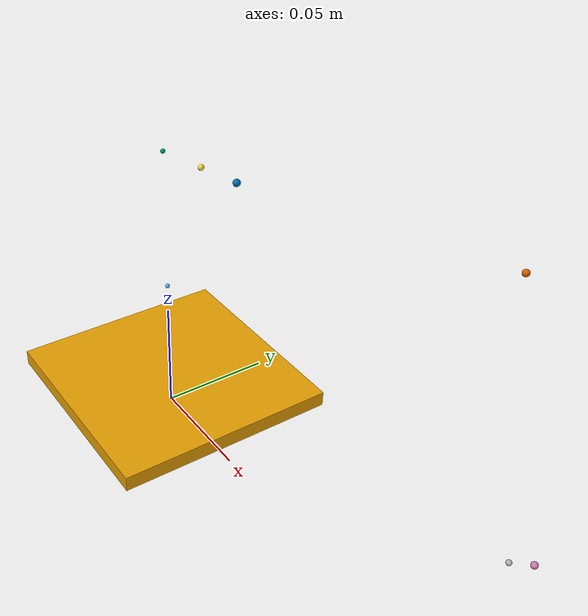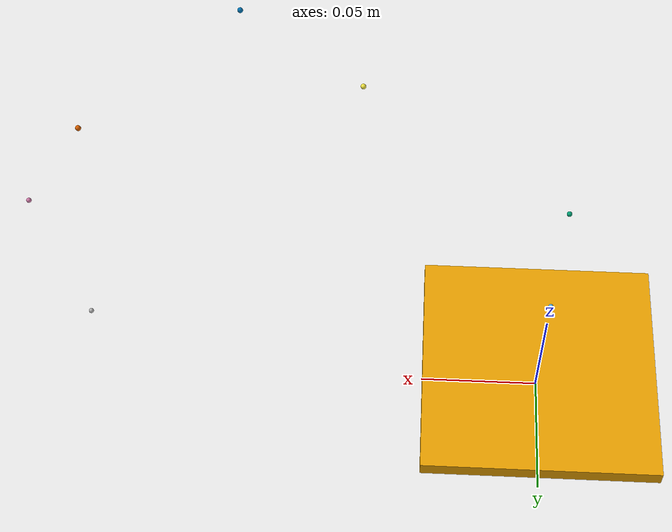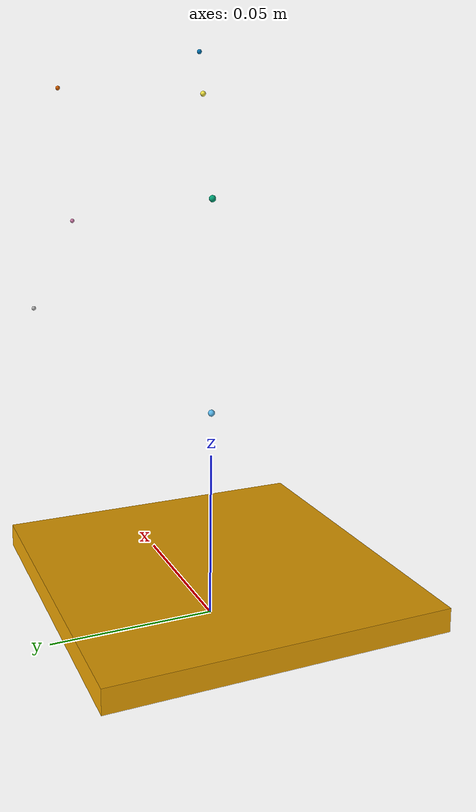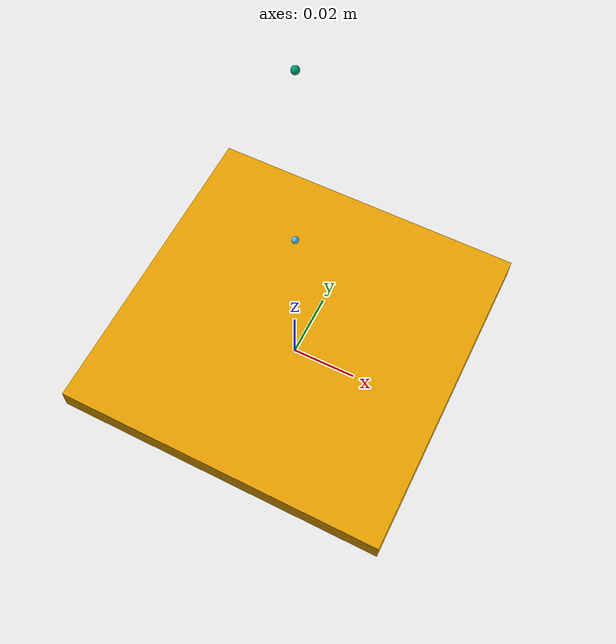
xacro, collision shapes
<?xml version="1.0"?>
<robot xmlns:xacro="http://www.ros.org/wiki/xacro" name="cyton">
  <xacro:include filename="$(find cyton_ros2_gazebo)/urdf/cyton_macros.urdf.xacro" />
  <xacro:cyton_robot/>
  <link name="world"/>
  <joint name="world_joint" type="fixed">
    <parent link="world" />
    <child link = "base_link" />
    <origin xyz="0.0 0.0 0.01" rpy="0.0 0.0 0.0" />
  </joint>
</robot>

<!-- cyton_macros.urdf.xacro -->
<robot xmlns:xacro="http://www.ros.org/wiki/xacro">

    <xacro:include filename="$(find cyton_ros2_gazebo)/urdf/cyton_gazebo.xacro" />
    <xacro:include filename="$(find cyton_ros2_gazebo)/urdf/cyton_transmission.xacro" />

    <xacro:macro name="cyton_robot">

        <xacro:cyton_transmission />
        <xacro:cyton_gazebo />

        <!-- Initial footprint motor used here -->
        <xacro:macro name="base_footprint">
            <link name="base_footprint">
                <!-- ZMIENIĆ!!! -->
                <inertial>
                    <mass value="2.92"/>
                    <origin rpy="0 0 0" xyz="-0.025566 -2.88e-05 0.057332"/>
                    <inertia ixx="0.00782229414331" ixy="-1.56191622996e-05" ixz="-0.00126005738123" iyy="0.0109027971813" iyz="1.08233858202e-05" izz="0.0102355503949"/>
                  </inertial>
                <!-- ZMIENIĆ -->
                <visual>
                    <origin xyz="0 0 1" rpy="0 0 0" />
                    <geometry>
                        <sphere radius="0.001" />
                    </geometry>
                    <material name="white">
                        <color rgba="1 1 1 1" />
                    </material>
                </visual>
                <collision>
                    <origin xyz="0 0 1" rpy="0 0 0" />
                    <geometry>
                        <sphere radius="0.01" />
                    </geometry>
                </collision>
            </link>

            <joint name="base_joint" type="fixed">
                <parent link="base_footprint" />
                <child link="base_link" />
                <dynamics damping="0.5" friction="0.5"/>
                <origin xyz="0.0 0.0 0.0" rpy="0 0 0" />
            </joint>
        </xacro:macro>

        <!-- Base of robot here -->
        <link name="base_link">
            <visual>
                <origin xyz="0 0 0" rpy="0 0 0" />
                <geometry>
                    <mesh filename="file://$(find cyton_ros2_gazebo)/meshes/visual/gamma_base.dae" />
                </geometry>
            </visual>
            <collision>
                <origin xyz="0 0 0.0026" />
                <geometry>
                    <box size="0.1 0.1 0.007" />
                </geometry>
            </collision>
            <inertial>
                <mass value="100.0" />
                <origin rpy="0 0 0" xyz="0 0 0" />
                <inertia ixx="1.1027" iyy="1.1027" izz="1.1027"
                    ixy="0.05" ixz="0.05" iyz="0.05" />
            </inertial>
        </link>

        <!-- First motor located here -->
        <joint name="shoulder_roll_joint" type="revolute">
            <parent link="base_link" />
            <child link="shoulder_roll" />
            <origin xyz="0 0 0.05315" rpy="0 0 1.2" />
            <dynamics damping="0.5" friction="0.5"/>
            <limit lower="-2.618" upper="2.618" effort="7.0" velocity="1.0" />
            <axis xyz="0 0 1" />
        </joint>

        <link name="shoulder_roll">
            <visual>
                <origin xyz="0 0 0" rpy="1.5708 0 3.14159" />
                <geometry>
                    <mesh filename="file://$(find cyton_ros2_gazebo)/meshes/visual/Shoulder_Roll.dae" />
                </geometry>
            </visual>

            <collision>
                <origin xyz="0 0 0" rpy="0 0 0" />
                <geometry>
                    <sphere radius="0.001" />
                </geometry>
            </collision>
            <inertial>
                <mass value="50.0" />
                <origin rpy="0 0 0" xyz="0 0 0" />
                <inertia ixx=".1027" iyy=".1027" izz=".1027"
                    ixy="0.05" ixz="0.05" iyz="0.05" />
            </inertial>
        </link>

        <!-- Second motor located here -->
        <joint name="shoulder_pitch_joint" type="revolute">
            <parent link="shoulder_roll" />
            <child link="shoulder_pitch" />
            <origin xyz="0 0 0.063" rpy="1.2 0 0" />
            <dynamics damping="0.5" friction="0.5"/>
            <limit lower="-1.8326" upper="1.8326" effort="7.0" velocity="1.0" />
            <axis xyz="1 0 0" />
        </joint>

        <link name="shoulder_pitch">
            <visual>
                <origin xyz="0.028 0 0" rpy="0 1.5708 0" />
                <geometry>
                    <mesh filename="file://$(find cyton_ros2_gazebo)/meshes/visual/Shoulder_Pitch.dae" />
                </geometry>
            </visual>
            <collision>
                <origin xyz="0 0 0" rpy="0 0 0" />
                <geometry>
                    <sphere radius="0.001" />
                </geometry>
            </collision>
            <inertial>
                <mass value="20.0" />
                <origin rpy="0 0 0" xyz="0 0 0" />
                <inertia ixx=".0827" iyy=".0827" izz=".0827"
                    ixy="0.05" ixz="0.05" iyz="0.05" />
            </inertial>
        </link>
<!-- TUTAJ ODPIERDALA -->
        <!-- Third motor located here -->
        <joint name="elbow_roll_joint" type="revolute">
            <parent link="shoulder_pitch" />
            <child link="elbow_roll" />
            <origin xyz="0 0 0.089" rpy="0 0 1.2" />
            <dynamics damping="0.5" friction="0.5"/>
            <limit lower="-1.8326" upper="1.8326" effort="7.0" velocity="1.0" />
            <axis xyz="0 0 1" />
        </joint>

        <link name="elbow_roll">
            <visual>
                <origin xyz="0 0 0" rpy="0 0 3.92699" />
                <geometry>
                    <mesh filename="file://$(find cyton_ros2_gazebo)/meshes/visual/Elbow_Roll.dae" />
                </geometry>
            </visual>
            <collision>
                <origin xyz="0 0 0" rpy="0 0 0" />
                <geometry>
                    <sphere radius="0.001" />
                </geometry>
            </collision>
            <inertial>
                <mass value="10.0" />
                <origin rpy="0 0 0" xyz="0 0 0" />
                <inertia ixx=".0627" iyy=".0627" izz=".0627"
                    ixy="0.05" ixz="0.05" iyz="0.05" />
            </inertial>
        </link>

        <!-- Fourth motor located here -->
        <joint name="elbow_pitch_joint" type="revolute">
            <parent link="elbow_roll" />
            <child link="elbow_pitch" />
            <origin xyz="0 0 0.052" rpy="1.2 0 0" />
            <dynamics damping="0.5" friction="0.5"/>
            <limit lower="-1.8326" upper="1.8326" effort="7.0" velocity="1.0" />
            <axis xyz="1 0 0" />
        </joint>

        <link name="elbow_pitch">
            <visual>
                <!-- Not sure if this is the correct orientation. -->
                <origin xyz="0.027 0 0" rpy="1.5708 0 1.5708" />
                <geometry>
                    <mesh filename="file://$(find cyton_ros2_gazebo)/meshes/visual/Elbow_Pitch.dae" />
                </geometry>
            </visual>
            <collision>
                <origin xyz="0 0 0" rpy="0 0 0" />
                <geometry>
                    <sphere radius="0.001" />
                </geometry>
            </collision>
            <inertial>
                <mass value="10.0" />
                <origin rpy="0 0 0" xyz="0 0 0" />
                <inertia ixx=".0327" iyy=".0327" izz=".0327"
                    ixy="0.05" ixz="0.05" iyz="0.05" />
            </inertial>
        </link>

        <!-- Fifth motor located here -->
        <joint name="elbow_yaw_joint" type="revolute">
            <parent link="elbow_pitch" />
            <child link="elbow_yaw" />
            <origin xyz="0 0 0.072" rpy="0 -1.2 0" />
            <dynamics damping="0.5" friction="0.5"/>
            <limit lower="-1.8326" upper="1.8326" effort="7.0" velocity="1.0" />
            <axis xyz="0 -1 0" />
        </joint>

        <link name="elbow_yaw">
            <visual>
                <origin xyz="0 0 0" rpy="1.5708 0 0" />
                <geometry>
                    <mesh filename="file://$(find cyton_ros2_gazebo)/meshes/visual/Elbow_Yaw.dae" />
                </geometry>
            </visual>
            <collision>
                <origin xyz="0 0 0" rpy="0 0 0" />
                <geometry>
                    <sphere radius="0.001" />
                </geometry>
            </collision>
            <inertial>
                <mass value="10.0" />
                <origin rpy="0 0 0" xyz="0 0 0" />
                <inertia ixx=".0227" iyy=".0227" izz=".0227"
                    ixy="0.05" ixz="0.05" iyz="0.05" />
            </inertial>
        </link>

        <!-- Sixth motor located here -->
        <joint name="wrist_pitch_joint" type="revolute">
            <parent link="elbow_yaw" />
            <child link="wrist_pitch" />
            <origin xyz="0 0 0.0718" rpy="1.2 0 0" />
            <dynamics damping="0.5" friction="0.5"/>
            <limit lower="-1.8326" upper="1.8326" effort="7.0" velocity="1.0" />
            <axis xyz="1 0 0" />
        </joint>

        <link name="wrist_pitch">
            <visual>
                <origin xyz="0.027 0 0" rpy="1.5708 0 1.5708" />
                <geometry>
                    <mesh filename="file://$(find cyton_ros2_gazebo)/meshes/visual/Wrist_Pitch.dae" />
                </geometry>
            </visual>
            <collision>
                <origin xyz="0 0 0" rpy="0 0 0" />
                <geometry>
                    <sphere radius="0.001" />
                </geometry>
            </collision>
            <inertial>
                <mass value="10.0" />
                <origin rpy="0 0 0" xyz="0 0 0" />
                <inertia ixx=".0127" iyy=".0127" izz=".0127"
                    ixy="0.05" ixz="0.05" iyz="0.05" />
            </inertial>
        </link>

        <!-- Seventh motor located here -->
        <joint name="wrist_roll_joint" type="revolute">
            <parent link="wrist_pitch" />
            <child link="wrist_roll" />
            <origin xyz="0 0 0.051425" rpy="0 0 1.2" />
            <dynamics damping="0.5" friction="0.5"/>
            <limit lower="-2.61799" upper="2.61799" effort="7.0" velocity="1.0" />
            <axis xyz="0 0 1" />
        </joint>

        <link name="wrist_roll">
            <visual>
                <origin xyz="0 0 0" rpy="0 3.14159 1.5708" />
                <geometry>
                    <mesh filename="file://$(find cyton_ros2_gazebo)/meshes/visual/Wrist_Roll.dae" />
                </geometry>
            </visual>
            <collision>
                <origin xyz="0 0 0" rpy="0 0 0" />
                <geometry>
                    <sphere radius="0.001" />
                </geometry>
            </collision>
            <inertial>
                <mass value="10.0" />
                <origin rpy="0 0 0" xyz="0 0 0" />
                <inertia ixx=".0027" iyy=".0027" izz=".0027"
                    ixy="0.05" ixz="0.05" iyz="0.05" />
            </inertial>
        </link>

        <!-- Eigth motor located here -->

        <!-- Eighth motor located here -->

    </xacro:macro>

</robot>
